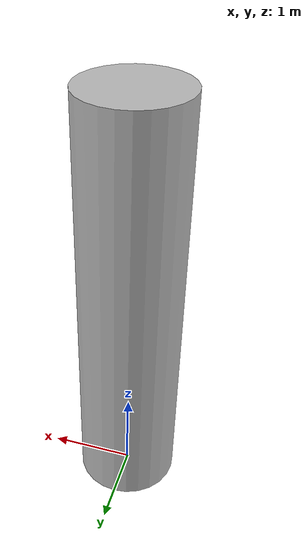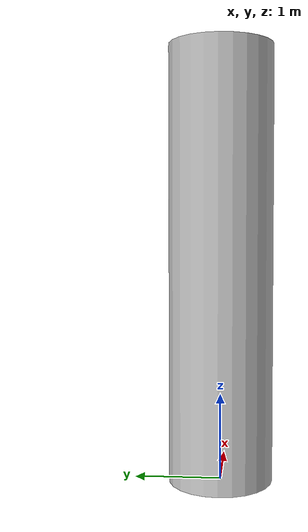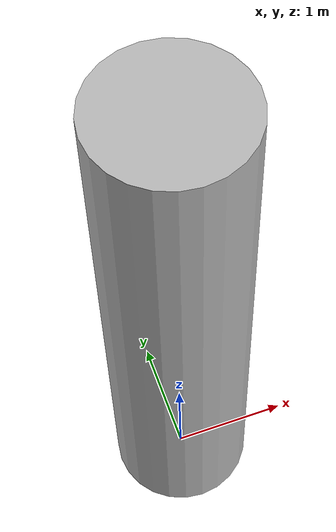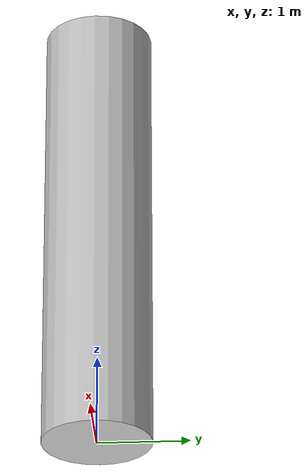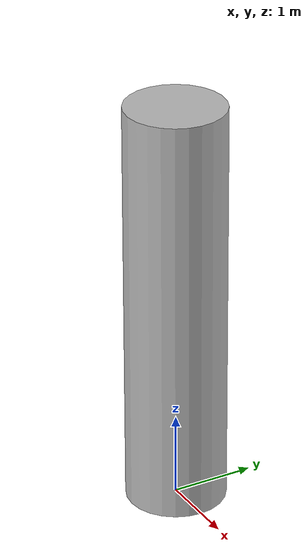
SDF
<?xml version='1.0'?>
<sdf version='1.6'>
  <model name='cylinder'>
    <link name='link_0'>
      <inertial>
        <mass>1</mass>
        <inertia>
          <ixx>0.0</ixx>
          <ixy>0</ixy>
          <ixz>0</ixz>
          <iyy>0.0</iyy>
          <iyz>0</iyz>
          <izz>0.0</izz>
        </inertia>
      </inertial>
      <pose frame=''>0 0 0 0 -0 0</pose>
      <visual name='visual'>
        <pose frame=''>0 0 0 0 -0 0</pose>
        <geometry>
          <mesh>
            <uri>model://cylinder/meshes/cilindro.dae</uri>
            <scale>1 1 1</scale>
          </mesh>
        </geometry>
        <transparency>0</transparency>
        <cast_shadows>1</cast_shadows>
      </visual>
      <collision name='collision'>
        <laser_retro>0</laser_retro>
        <max_contacts>10</max_contacts>
        <pose frame=''>0 0 0 0 -0 0</pose>
        <geometry>
          <mesh>
            <uri>model://cylinder/meshes/cilindro.dae</uri>
            <scale>1 1 1</scale>
          </mesh>
        </geometry>
      </collision>
    </link>
    <static>false</static>
    <allow_auto_disable>1</allow_auto_disable>
  </model>
</sdf>
